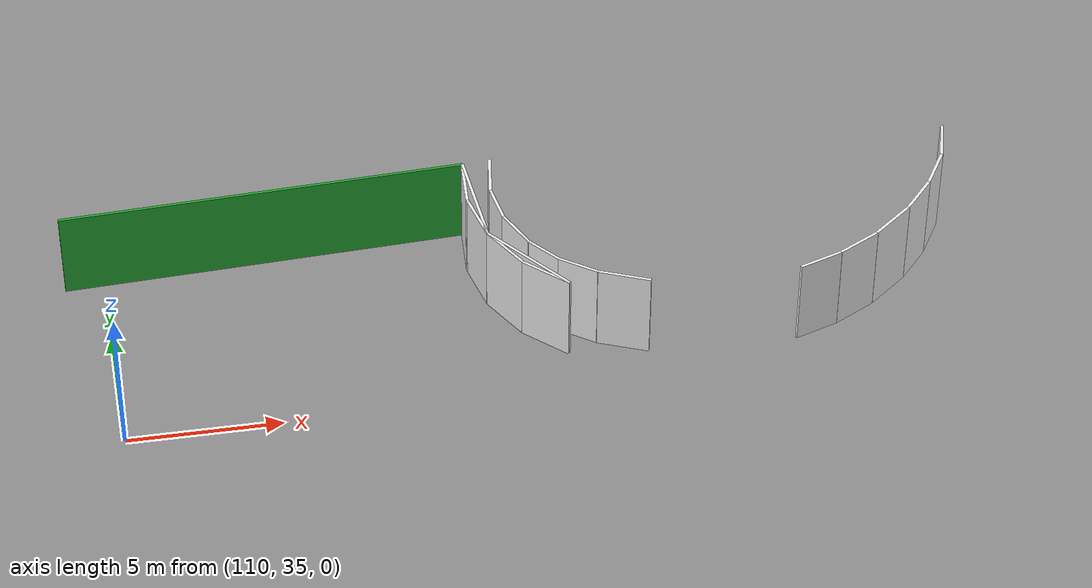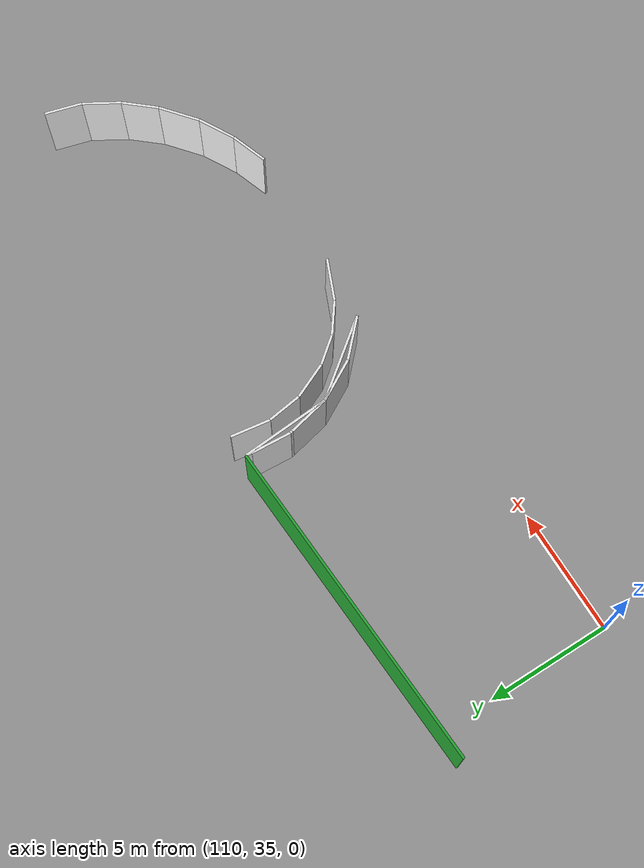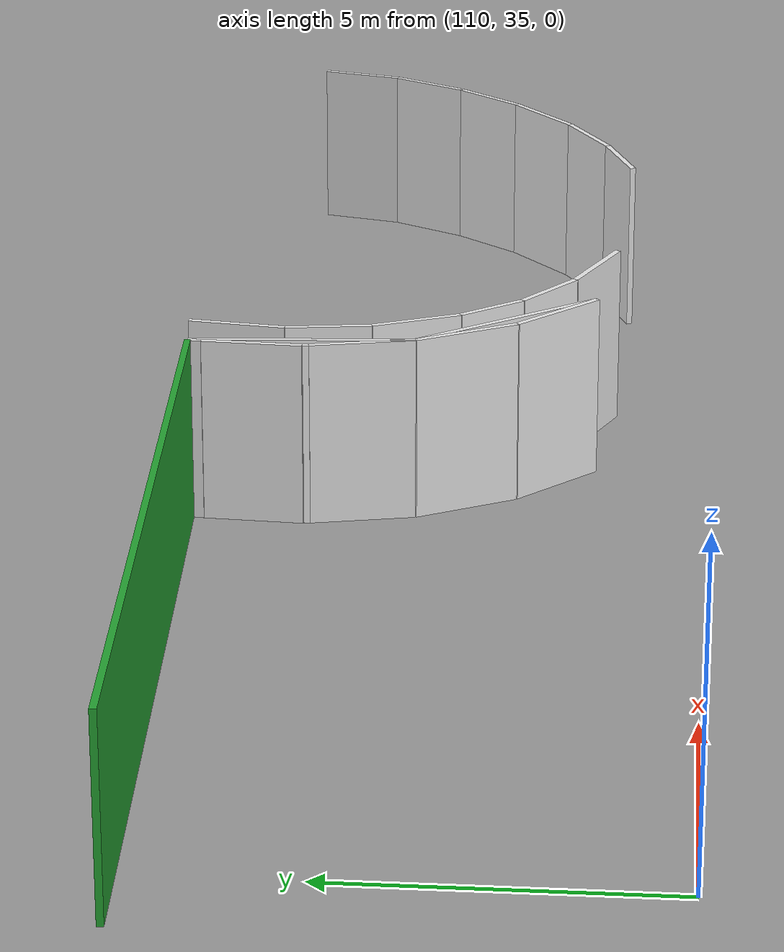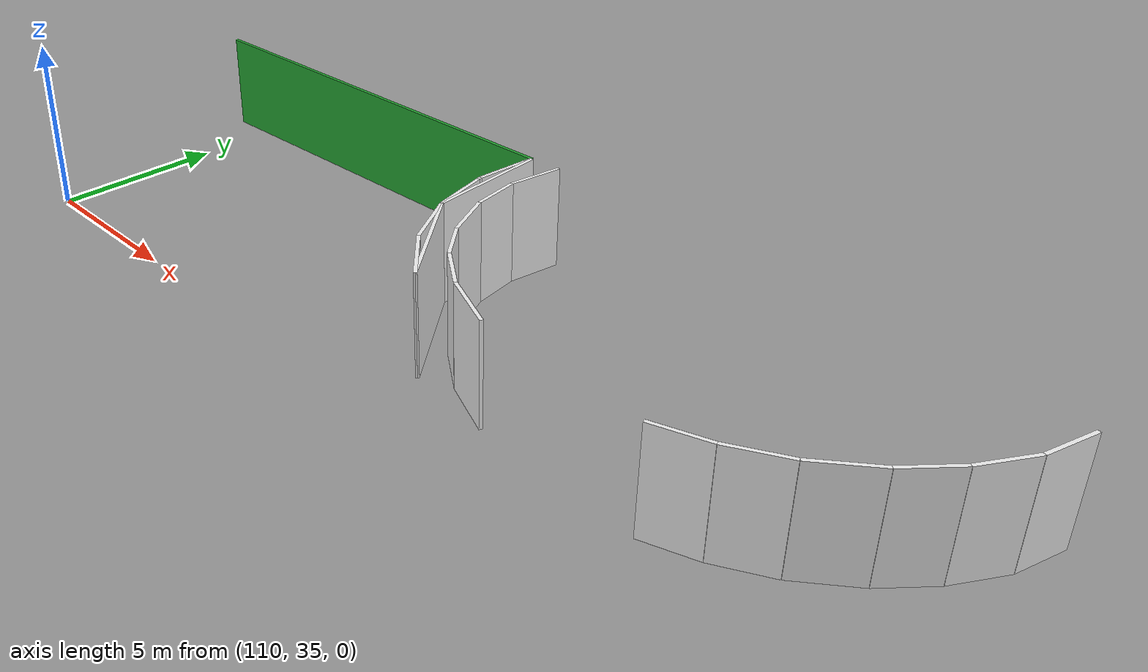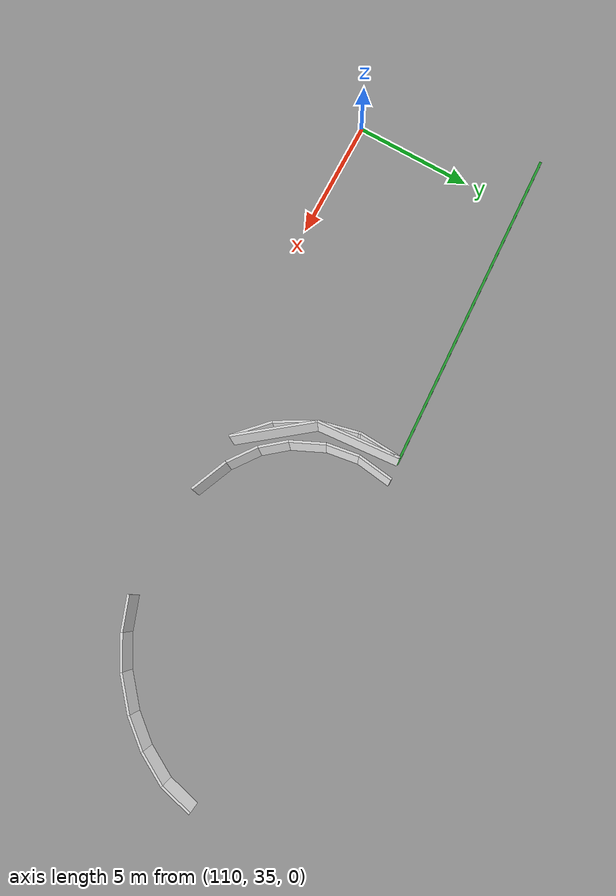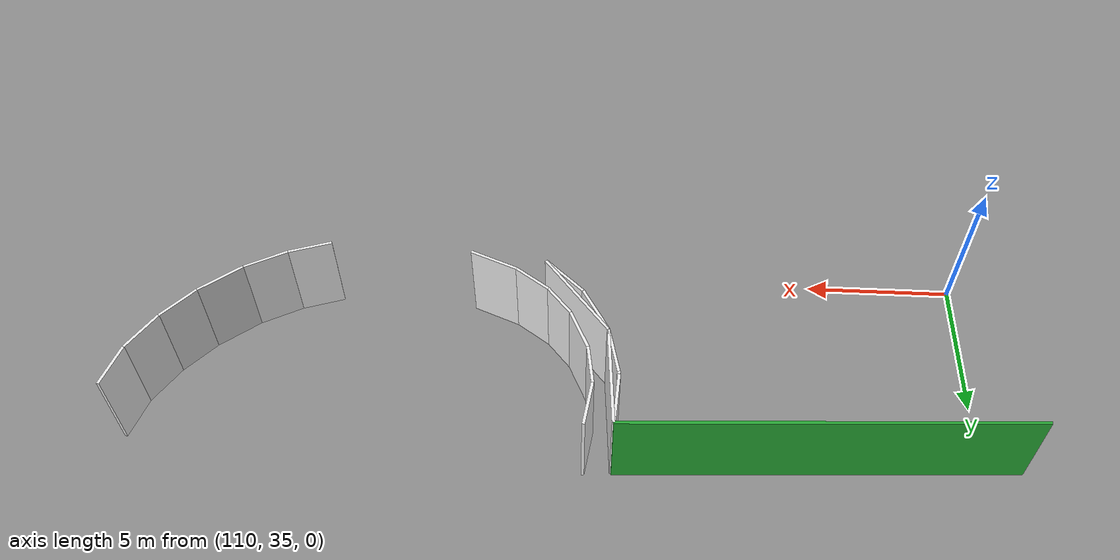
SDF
<sdf version="1.6">
 <world name="default">
  <model name="wall_115.3_42.8_1.5">
   <static>true</static>
   <pose>115.2949999999837 42.75499999988824 1.5 0 0 0.0504469889047384</pose>
   <link name="link">
    <visual name="visual">
     <geometry><box><size>13.286903326222951 0.1 3</size></box></geometry>
     <material>
      <script><uri>file://media/materials/scripts/gazebo.material</uri><name>Gazebo/Green</name></script>
     </material>
    </visual>
    <collision name="collision"><geometry><box><size>13.286903326222951 0.1 3</size></box></geometry></collision>
   </link>
  </model>
  <model name="wall_122.7_42.4_1.5">
   <static>true</static>
   <pose>122.73000000001048 42.40999999991618 1.5 0 0 -1.710898051205598</pose>
   <link name="link">
    <visual name="visual">
     <geometry><box><size>1.5754364475241969 0.1 3</size></box></geometry>
     <material>
      <script><uri>file://media/materials/scripts/gazebo.material</uri><name>Gazebo/White</name></script>
     </material>
    </visual>
    <collision name="collision"><geometry><box><size>1.5754364475241969 0.1 3</size></box></geometry></collision>
   </link>
  </model>
  <model name="wall_122.7_40.9_1.5">
   <static>true</static>
   <pose>122.72000000000116 40.94499999983236 1.5 0 0 -1.4258349304067353</pose>
   <link name="link">
    <visual name="visual">
     <geometry><box><size>1.384521578131188 0.1 3</size></box></geometry>
     <material>
      <script><uri>file://media/materials/scripts/gazebo.material</uri><name>Gazebo/White</name></script>
     </material>
    </visual>
    <collision name="collision"><geometry><box><size>1.384521578131188 0.1 3</size></box></geometry></collision>
   </link>
  </model>
  <model name="wall_123.1_39.6_1.5">
   <static>true</static>
   <pose>123.13000000000466 39.574999999953434 1.5 0 0 -1.1458199052710913</pose>
   <link name="link">
    <visual name="visual">
     <geometry><box><size>1.5037619489216145 0.1 3</size></box></geometry>
     <material>
      <script><uri>file://media/materials/scripts/gazebo.material</uri><name>Gazebo/White</name></script>
     </material>
    </visual>
    <collision name="collision"><geometry><box><size>1.5037619489216145 0.1 3</size></box></geometry></collision>
   </link>
  </model>
  <model name="wall_123.8_38.4_1.5">
   <static>true</static>
   <pose>123.8299999999872 38.41000000014901 1.5 0 0 -0.8884797719201485</pose>
   <link name="link">
    <visual name="visual">
     <geometry><box><size>1.2369316876372989 0.1 3</size></box></geometry>
     <material>
      <script><uri>file://media/materials/scripts/gazebo.material</uri><name>Gazebo/White</name></script>
     </material>
    </visual>
    <collision name="collision"><geometry><box><size>1.2369316876372989 0.1 3</size></box></geometry></collision>
   </link>
  </model>
  <model name="wall_124.8_37.5_1.5">
   <static>true</static>
   <pose>124.77999999999884 37.52000000001863 1.5 0 0 -0.6319742419690464</pose>
   <link name="link">
    <visual name="visual">
     <geometry><box><size>1.388092216176113 0.1 3</size></box></geometry>
     <material>
      <script><uri>file://media/materials/scripts/gazebo.material</uri><name>Gazebo/White</name></script>
     </material>
    </visual>
    <collision name="collision"><geometry><box><size>1.388092216176113 0.1 3</size></box></geometry></collision>
   </link>
  </model>
  <model name="wall_126.1_36.8_1.5">
   <static>true</static>
   <pose>126.13000000000466 36.77499999990687 1.5 0 0 -0.40106625021121617</pose>
   <link name="link">
    <visual name="visual">
     <geometry><box><size>1.716187635361509 0.1 3</size></box></geometry>
     <material>
      <script><uri>file://media/materials/scripts/gazebo.material</uri><name>Gazebo/White</name></script>
     </material>
    </visual>
    <collision name="collision"><geometry><box><size>1.716187635361509 0.1 3</size></box></geometry></collision>
   </link>
  </model>
  <model name="wall_132.4_36.5_1.5">
   <static>true</static>
   <pose>132.42999999999302 36.514999999897555 1.5 0 0 0.33227648126688747</pose>
   <link name="link">
    <visual name="visual">
     <geometry><box><size>1.5021651040686979 0.1 3</size></box></geometry>
     <material>
      <script><uri>file://media/materials/scripts/gazebo.material</uri><name>Gazebo/White</name></script>
     </material>
    </visual>
    <collision name="collision"><geometry><box><size>1.5021651040686979 0.1 3</size></box></geometry></collision>
   </link>
  </model>
  <model name="wall_133.8_37.1_1.5">
   <static>true</static>
   <pose>133.82000000000698 37.12999999988824 1.5 0 0 0.4983157943414261</pose>
   <link name="link">
    <visual name="visual">
     <geometry><box><size>1.5482893787315108 0.1 3</size></box></geometry>
     <material>
      <script><uri>file://media/materials/scripts/gazebo.material</uri><name>Gazebo/White</name></script>
     </material>
    </visual>
    <collision name="collision"><geometry><box><size>1.5482893787315108 0.1 3</size></box></geometry></collision>
   </link>
  </model>
  <model name="wall_135.2_38.0_1.5">
   <static>true</static>
   <pose>135.15499999999884 38.03499999991618 1.5 0 0 0.6848975642669308</pose>
   <link name="link">
    <visual name="visual">
     <geometry><box><size>1.6914490827793647 0.1 3</size></box></geometry>
     <material>
      <script><uri>file://media/materials/scripts/gazebo.material</uri><name>Gazebo/White</name></script>
     </material>
    </visual>
    <collision name="collision"><geometry><box><size>1.6914490827793647 0.1 3</size></box></geometry></collision>
   </link>
  </model>
  <model name="wall_136.3_39.1_1.5">
   <static>true</static>
   <pose>136.2950000000128 39.13500000000931 1.5 0 0 0.8614417228159299</pose>
   <link name="link">
    <visual name="visual">
     <geometry><box><size>1.4892279882068225 0.1 3</size></box></geometry>
     <material>
      <script><uri>file://media/materials/scripts/gazebo.material</uri><name>Gazebo/White</name></script>
     </material>
    </visual>
    <collision name="collision"><geometry><box><size>1.4892279882068225 0.1 3</size></box></geometry></collision>
   </link>
  </model>
  <model name="wall_137.2_40.4_1.5">
   <static>true</static>
   <pose>137.1700000000128 40.360000000102445 1.5 0 0 1.0370881351170083</pose>
   <link name="link">
    <visual name="visual">
     <geometry><box><size>1.5332318805419543 0.1 3</size></box></geometry>
     <material>
      <script><uri>file://media/materials/scripts/gazebo.material</uri><name>Gazebo/White</name></script>
     </material>
    </visual>
    <collision name="collision"><geometry><box><size>1.5332318805419543 0.1 3</size></box></geometry></collision>
   </link>
  </model>
  <model name="wall_137.8_41.7_1.5">
   <static>true</static>
   <pose>137.75500000000466 41.74500000011176 1.5 0 0 1.3080489362155228</pose>
   <link name="link">
    <visual name="visual">
     <geometry><box><size>1.501532550613227 0.1 3</size></box></geometry>
     <material>
      <script><uri>file://media/materials/scripts/gazebo.material</uri><name>Gazebo/White</name></script>
     </material>
    </visual>
    <collision name="collision"><geometry><box><size>1.501532550613227 0.1 3</size></box></geometry></collision>
   </link>
  </model>
  <model name="wall_121.9_43.0_1.5">
   <static>true</static>
   <pose>121.91500000000815 42.97999999998137 1.5 0 0 -1.706324040804011</pose>
   <link name="link">
    <visual name="visual">
     <geometry><box><size>0.22203603284927648 0.1 3</size></box></geometry>
     <material>
      <script><uri>file://media/materials/scripts/gazebo.material</uri><name>Gazebo/White</name></script>
     </material>
    </visual>
    <collision name="collision"><geometry><box><size>0.22203603284927648 0.1 3</size></box></geometry></collision>
   </link>
  </model>
  <model name="wall_121.9_42.1_1.5">
   <static>true</static>
   <pose>121.85000000000582 42.07000000006519 1.5 0 0 -1.6332151368089731</pose>
   <link name="link">
    <visual name="visual">
     <geometry><box><size>1.6031219542832693 0.1 3</size></box></geometry>
     <material>
      <script><uri>file://media/materials/scripts/gazebo.material</uri><name>Gazebo/White</name></script>
     </material>
    </visual>
    <collision name="collision"><geometry><box><size>1.6031219542832693 0.1 3</size></box></geometry></collision>
   </link>
  </model>
  <model name="wall_121.8_41.2_1.5">
   <static>true</static>
   <pose>121.80999999999767 41.21999999997206 1.5 0 0 -1.373400766945016</pose>
   <link name="link">
    <visual name="visual">
     <geometry><box><size>0.10198039036683233 0.1 3</size></box></geometry>
     <material>
      <script><uri>file://media/materials/scripts/gazebo.material</uri><name>Gazebo/White</name></script>
     </material>
    </visual>
    <collision name="collision"><geometry><box><size>0.10198039036683233 0.1 3</size></box></geometry></collision>
   </link>
  </model>
  <model name="wall_122.0_40.3_1.5">
   <static>true</static>
   <pose>122.00500000000466 40.34499999997206 1.5 0 0 -1.350203072831387</pose>
   <link name="link">
    <visual name="visual">
     <geometry><box><size>1.6909760494132429 0.1 3</size></box></geometry>
     <material>
      <script><uri>file://media/materials/scripts/gazebo.material</uri><name>Gazebo/White</name></script>
     </material>
    </visual>
    <collision name="collision"><geometry><box><size>1.6909760494132429 0.1 3</size></box></geometry></collision>
   </link>
  </model>
  <model name="wall_122.6_38.7_1.5">
   <static>true</static>
   <pose>122.63000000000466 38.73999999999069 1.5 0 0 -1.057190322085212</pose>
   <link name="link">
    <visual name="visual">
     <geometry><box><size>1.7910890542300064 0.1 3</size></box></geometry>
     <material>
      <script><uri>file://media/materials/scripts/gazebo.material</uri><name>Gazebo/White</name></script>
     </material>
    </visual>
    <collision name="collision"><geometry><box><size>1.7910890542300064 0.1 3</size></box></geometry></collision>
   </link>
  </model>
  <model name="wall_123.7_37.3_1.5">
   <static>true</static>
   <pose>123.72000000000116 37.34000000008382 1.5 0 0 -0.7617805082994406</pose>
   <link name="link">
    <visual name="visual">
     <geometry><box><size>1.7965522534480356 0.1 3</size></box></geometry>
     <material>
      <script><uri>file://media/materials/scripts/gazebo.material</uri><name>Gazebo/White</name></script>
     </material>
    </visual>
    <collision name="collision"><geometry><box><size>1.7965522534480356 0.1 3</size></box></geometry></collision>
   </link>
  </model>
  <model name="wall_123.3_38.1_1.5">
   <static>true</static>
   <pose>123.27999999999884 38.12000000011176 1.5 0 0 2.232333811009223</pose>
   <link name="link">
    <visual name="visual">
     <geometry><box><size>3.548577179508213 0.1 3</size></box></geometry>
     <material>
      <script><uri>file://media/materials/scripts/gazebo.material</uri><name>Gazebo/White</name></script>
     </material>
    </visual>
    <collision name="collision"><geometry><box><size>3.548577179508213 0.1 3</size></box></geometry></collision>
   </link>
  </model>
  <model name="wall_122.1_41.3_1.5">
   <static>true</static>
   <pose>122.05999999999767 41.30499999993481 1.5 0 0 1.6434971027864747</pose>
   <link name="link">
    <visual name="visual">
     <geometry><box><size>3.5794552656525696 0.1 3</size></box></geometry>
     <material>
      <script><uri>file://media/materials/scripts/gazebo.material</uri><name>Gazebo/White</name></script>
     </material>
    </visual>
    <collision name="collision"><geometry><box><size>3.5794552656525696 0.1 3</size></box></geometry></collision>
   </link>
  </model>
 </world>
</sdf>
